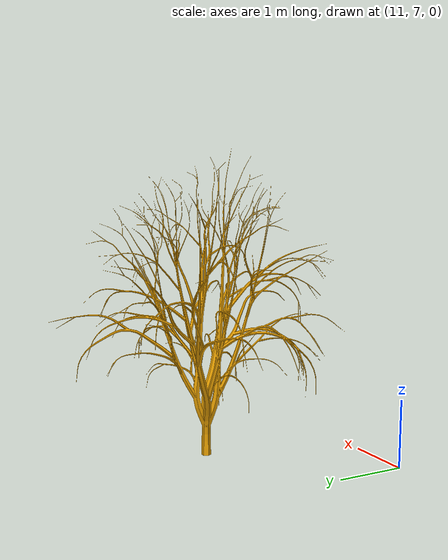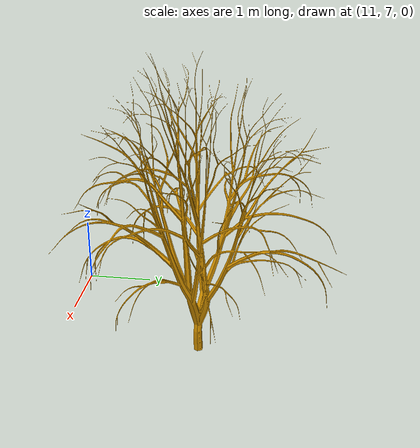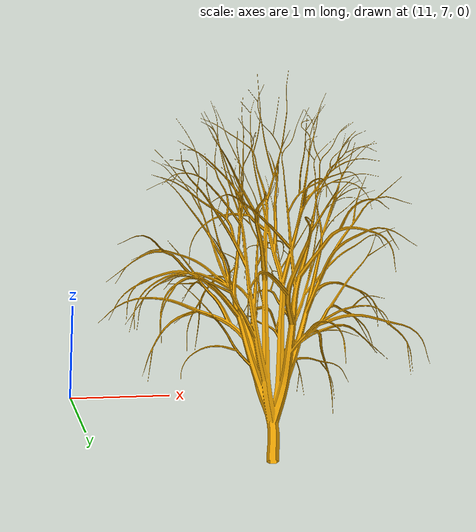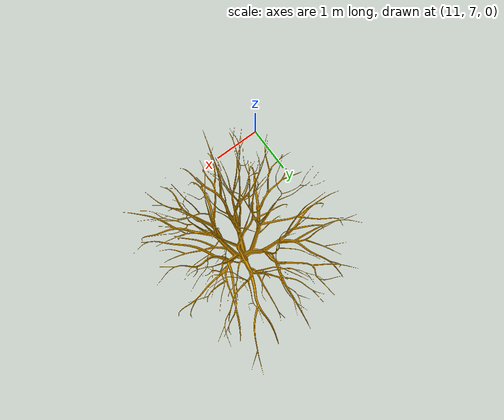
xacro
<?xml version="1.0"?>
<robot name="robot">
  <link name="basic_terrain_v3_tree_001_001_link">
    <inertial>
      <origin xyz="0 0 0" rpy="0 0 0"/>
      <mass value="1"/>
      <inertia ixx="1" ixy="0" ixz="0" iyy="1" iyz="0" izz="1"/>
    </inertial>
    <visual>
      <origin xyz="0 0 0" rpy="0 0 0"/>
      <geometry>
        <mesh filename="package://custom_gazebo_world/world_type/medium_world/meshes/basic_terrain_v3_tree_001_001.dae"/>
      </geometry>
    </visual>
    <collision>
      <origin xyz="0 0 0" rpy="0 0 0"/>
      <geometry>
        <mesh filename="package://custom_gazebo_world/world_type/medium_world/meshes/basic_terrain_v3_tree_001_001_collision.stl"/>
      </geometry>
    </collision>
  </link>
  <gazebo>
    <static>true</static>
  </gazebo>
</robot>
